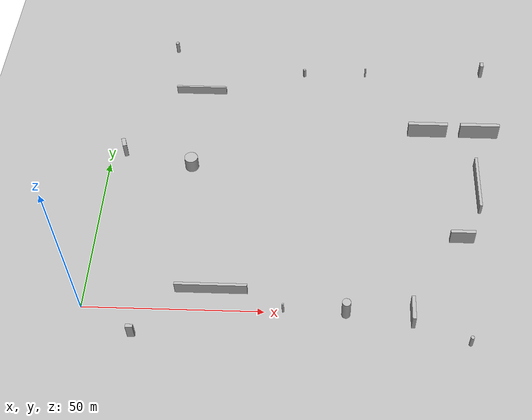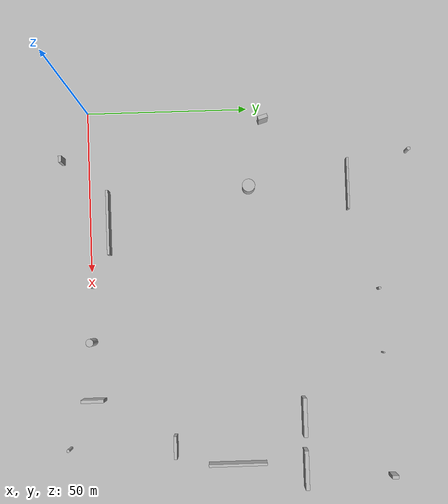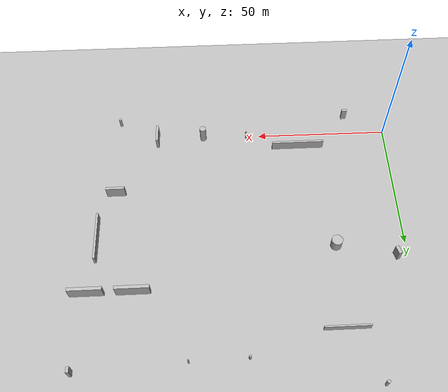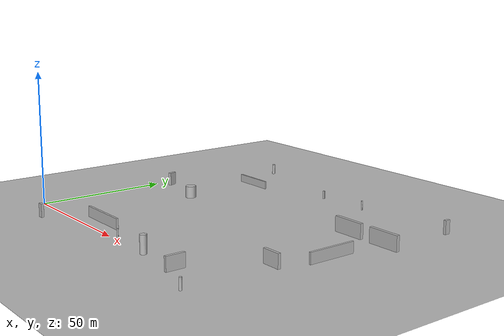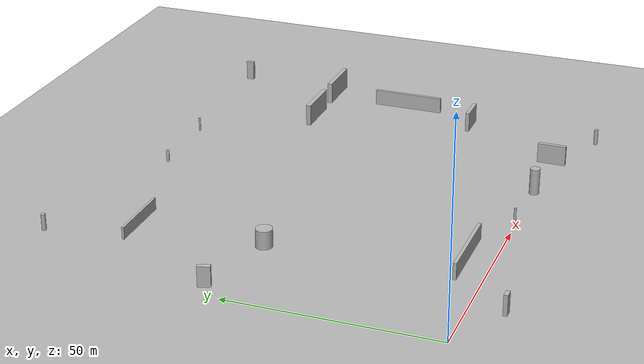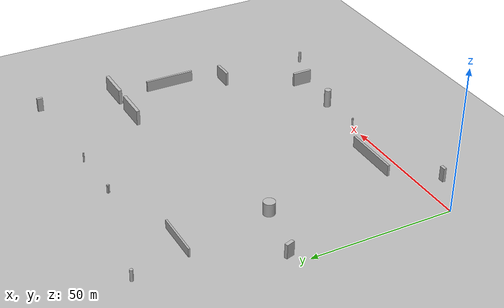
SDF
<sdf version="1.9">
 <world name="navigation_generalization">
  <physics type="ode">
   <max_step_size>0.004</max_step_size>
   <real_time_factor>0.8</real_time_factor>
   <real_time_update_rate>200</real_time_update_rate>
  </physics>
  <gravity>0 0 -9.8</gravity>
  <scene>
   <grid>true</grid>
   <ambient>0.4 0.4 0.4 1</ambient>
   <background>0.72 0.78 0.85 1</background>
   <shadows>true</shadows>
  </scene>
  <model name="ground_plane">
   <static>true</static>
   <link name="link">
    <collision name="collision">
     <geometry><plane><normal>0 0 1</normal><size>180 140</size></plane></geometry>
    </collision>
    <visual name="visual">
     <geometry><plane><normal>0 0 1</normal><size>180 140</size></plane></geometry>
     <material><ambient>0.72 0.72 0.72 1</ambient><diffuse>0.72 0.72 0.72 1</diffuse></material>
    </visual>
   </link>
  </model>
  <model name="gen_sudden_pillar">
   <static>true</static>
   <pose>72 0 3.25 0 0 0</pose>
   <link name="link">
    <collision name="collision">
     <geometry><cylinder><radius>1.2</radius><length>6.5</length></cylinder></geometry>
    </collision>
    <visual name="visual">
     <geometry><cylinder><radius>1.2</radius><length>6.5</length></cylinder></geometry>
    </visual>
   </link>
  </model>
  <model name="gen_small_post">
   <static>true</static>
   <pose>55 0.4 2.0 0 0 0</pose>
   <link name="link">
    <collision name="collision">
     <geometry><cylinder><radius>0.28</radius><length>4.0</length></cylinder></geometry>
    </collision>
    <visual name="visual">
     <geometry><cylinder><radius>0.28</radius><length>4.0</length></cylinder></geometry>
    </visual>
   </link>
  </model>
  <model name="gen_cross_wall_x">
   <static>true</static>
   <pose>90 0 2.5 0 0 0</pose>
   <link name="link">
    <collision name="collision"><geometry><box><size>1.0 7.0 5.0</size></box></geometry></collision>
    <visual name="visual"><geometry><box><size>1.0 7.0 5.0</size></box></geometry></visual>
   </link>
  </model>
  <model name="gen_long_wall_x">
   <static>true</static>
   <pose>35 6 2.0 0 0 0</pose>
   <link name="link">
    <collision name="collision"><geometry><box><size>20.0 0.8 4.0</size></box></geometry></collision>
    <visual name="visual"><geometry><box><size>20.0 0.8 4.0</size></box></geometry></visual>
   </link>
  </model>
  <model name="gen_cross_wall_y">
   <static>true</static>
   <pose>105 25 2.5 0 0 0</pose>
   <link name="link">
    <collision name="collision"><geometry><box><size>7.0 1.0 5.0</size></box></geometry></collision>
    <visual name="visual"><geometry><box><size>7.0 1.0 5.0</size></box></geometry></visual>
   </link>
  </model>
  <model name="gen_long_wall_y">
   <static>true</static>
   <pose>111 44 2.0 0 0 0</pose>
   <link name="link">
    <collision name="collision"><geometry><box><size>0.8 18.0 4.0</size></box></geometry></collision>
    <visual name="visual"><geometry><box><size>0.8 18.0 4.0</size></box></geometry></visual>
   </link>
  </model>
  <model name="gen_gap_west">
   <static>true</static>
   <pose>97 65 2.75 0 0 0</pose>
   <link name="link">
    <collision name="collision"><geometry><box><size>12.0 1.2 5.5</size></box></geometry></collision>
    <visual name="visual"><geometry><box><size>12.0 1.2 5.5</size></box></geometry></visual>
   </link>
  </model>
  <model name="gen_gap_east">
   <static>true</static>
   <pose>113 65 2.75 0 0 0</pose>
   <link name="link">
    <collision name="collision"><geometry><box><size>12.0 1.2 5.5</size></box></geometry></collision>
    <visual name="visual"><geometry><box><size>12.0 1.2 5.5</size></box></geometry></visual>
   </link>
  </model>
  <model name="gen_small_post_west">
   <static>true</static>
   <pose>78 90.2 1.75 0 0 0</pose>
   <link name="link">
    <collision name="collision">
     <geometry><cylinder><radius>0.25</radius><length>3.5</length></cylinder></geometry>
    </collision>
    <visual name="visual">
     <geometry><cylinder><radius>0.25</radius><length>3.5</length></cylinder></geometry>
    </visual>
   </link>
  </model>
  <model name="gen_small_box_west">
   <static>true</static>
   <pose>58 89.7 1.5 0 0 0.35</pose>
   <link name="link">
    <collision name="collision"><geometry><box><size>0.7 0.7 3.0</size></box></geometry></collision>
    <visual name="visual"><geometry><box><size>0.7 0.7 3.0</size></box></geometry></visual>
   </link>
  </model>
  <model name="gen_lane_divider">
   <static>true</static>
   <pose>25 81 1.5 0 0 0</pose>
   <link name="link">
    <collision name="collision"><geometry><box><size>16.0 0.6 3.0</size></box></geometry></collision>
    <visual name="visual"><geometry><box><size>16.0 0.6 3.0</size></box></geometry></visual>
   </link>
  </model>
  <model name="gen_uturn_island">
   <static>true</static>
   <pose>25 50 2.25 0 0 0</pose>
   <link name="link">
    <collision name="collision">
     <geometry><cylinder><radius>2.0</radius><length>4.5</length></cylinder></geometry>
    </collision>
    <visual name="visual">
     <geometry><cylinder><radius>2.0</radius><length>4.5</length></cylinder></geometry>
    </visual>
   </link>
  </model>
  <model name="gen_landmark_sw">
   <static>true</static>
   <pose>15 -8 2.5 0 0 0</pose>
   <link name="link">
    <collision name="collision"><geometry><box><size>2 1 5</size></box></geometry></collision>
    <visual name="visual"><geometry><box><size>2 1 5</size></box></geometry></visual>
   </link>
  </model>
  <model name="gen_landmark_se">
   <static>true</static>
   <pose>105 -8 2.0 0 0 0</pose>
   <link name="link">
    <collision name="collision">
     <geometry><cylinder><radius>0.5</radius><length>4</length></cylinder></geometry>
    </collision>
    <visual name="visual">
     <geometry><cylinder><radius>0.5</radius><length>4</length></cylinder></geometry>
    </visual>
   </link>
  </model>
  <model name="gen_landmark_ne">
   <static>true</static>
   <pose>116 92 2.5 0 0 0</pose>
   <link name="link">
    <collision name="collision"><geometry><box><size>1 2 5</size></box></geometry></collision>
    <visual name="visual"><geometry><box><size>1 2 5</size></box></geometry></visual>
   </link>
  </model>
  <model name="gen_landmark_nw">
   <static>true</static>
   <pose>15 100 2.0 0 0 0</pose>
   <link name="link">
    <collision name="collision">
     <geometry><cylinder><radius>0.55</radius><length>4</length></cylinder></geometry>
    </collision>
    <visual name="visual">
     <geometry><cylinder><radius>0.55</radius><length>4</length></cylinder></geometry>
    </visual>
   </link>
  </model>
  <model name="gen_landmark_mid">
   <static>true</static>
   <pose>4 55 2.5 0 0 0.3</pose>
   <link name="link">
    <collision name="collision"><geometry><box><size>1.2 3.0 5.0</size></box></geometry></collision>
    <visual name="visual"><geometry><box><size>1.2 3.0 5.0</size></box></geometry></visual>
   </link>
  </model>
  <light name="sunUTC" type="directional">
   <pose>0 0 500 0 0 0</pose>
   <intensity>1</intensity>
   <direction>0.001 0.625 -0.78</direction>
  </light>
  <spherical_coordinates>
   <surface_model>EARTH_WGS84</surface_model>
   <world_frame_orientation>ENU</world_frame_orientation>
   <latitude_deg>10.8231</latitude_deg>
   <longitude_deg>106.6297</longitude_deg>
   <elevation>10</elevation>
  </spherical_coordinates>
 </world>
</sdf>
